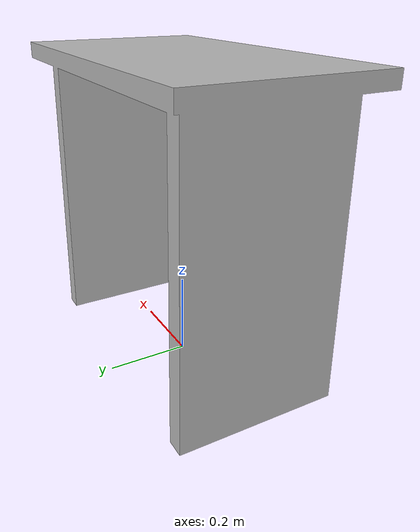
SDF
<?xml version='1.0'?>
<sdf version='1.4'>
 <model name='robot_stand'>
  <static>true</static>
  <link name='link'>
   <collision name='link_total'>
    <pose>0 0 0.35 0 0 0</pose>
    <geometry>
     <box>
      <size>0.913 0.4 0.82</size>
     </box>
    </geometry>
   </collision>
   <visual name='visual'>
    <geometry>
     <mesh>
      <uri>model://robot_stand/meshes/robot_stand.dae</uri>
     </mesh>
    </geometry>
   </visual>
  </link>
 </model>
</sdf>
